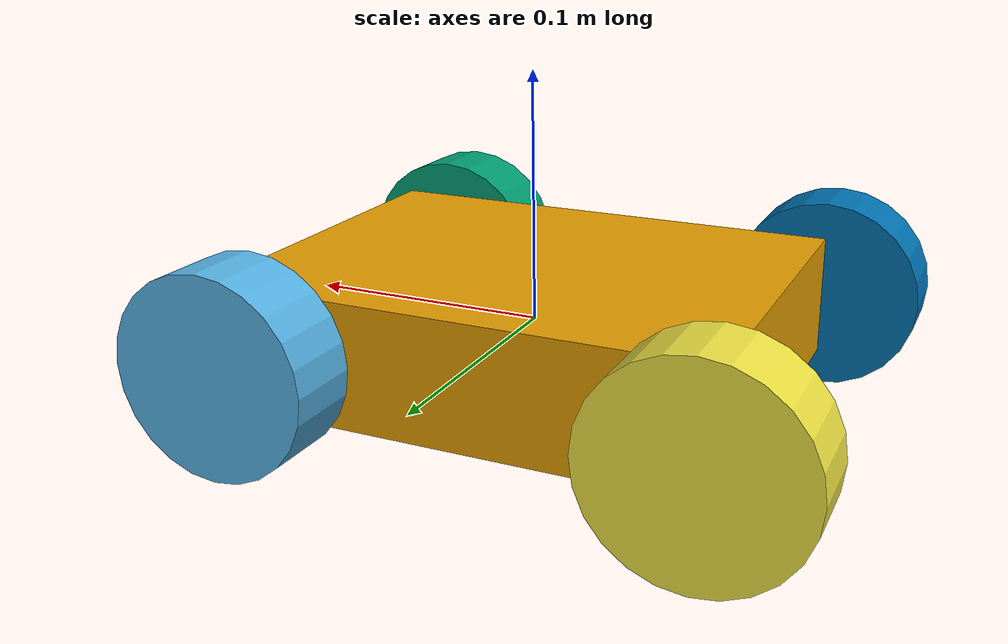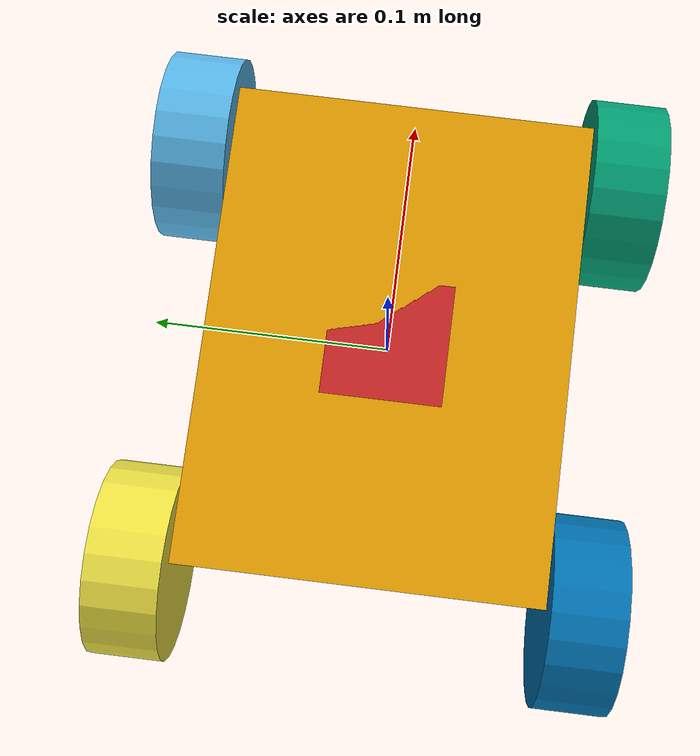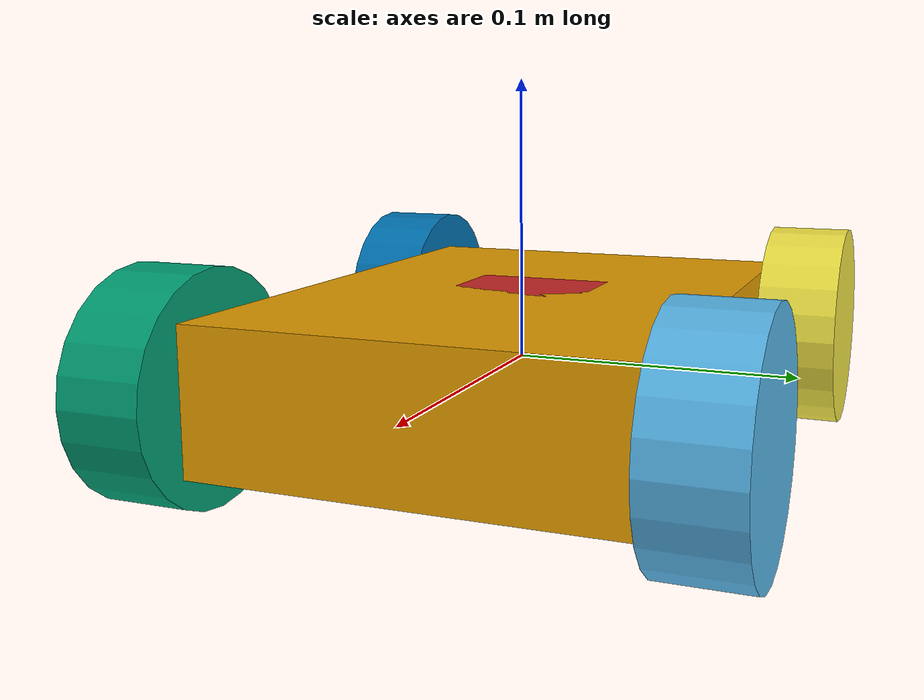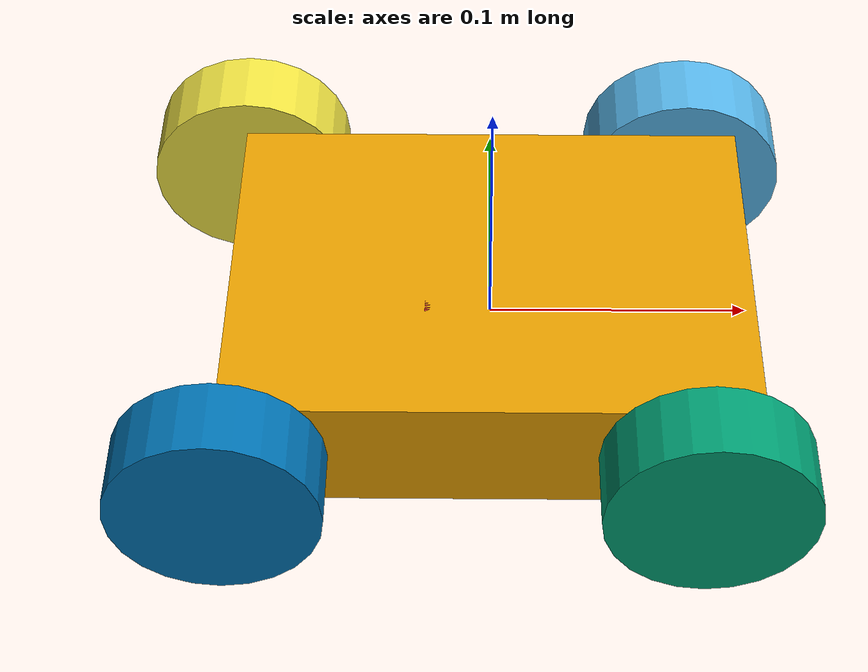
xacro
<?xml version='1.0'?>

<robot name="robot" xmlns:xacro="http://www.ros.org/wiki/xacro">

  <xacro:property name="chassis_width" value="0.15"/>
  <xacro:property name="chassis_length" value="0.2"/>
  <xacro:property name="chassis_height" value="0.05"/>
  <xacro:property name="chassis_mass" value="0.5"/>
  <xacro:property name="wheel_radius" value="0.04"/>
  <xacro:property name="wheel_width" value="0.03"/>
  <xacro:property name="camera_link" value="0.05" />

  <xacro:include filename="$(find enph353_ros_lab)/urdf/macros.xacro" />

  <xacro:macro name="default_inertial" params="mass">
    <inertial>
      <mass value="${mass}" />
      <inertia ixx="1.0" ixy="0.0" ixz="0.0" iyy="1.0" iyz="0.0" izz="1.0" />
    </inertial>
  </xacro:macro>

  <material name="blue">
    <color rgba="0 0 0.8 1"/>
  </material>

  <material name="black">
    <color rgba="0 0 0 1"/>
  </material>

  <link name='chassis'>
    <xacro:box_inertial name="chassis" m="${chassis_mass}" x="${chassis_length}" y="${chassis_width}" z="${chassis_height}"/>

    <collision name='chassis_collision'>
      <geometry>
        <box size="${chassis_length} ${chassis_width} ${chassis_height}"/>
      </geometry>
    </collision>
    <xacro:default_inertial mass="1"/>

    <visual name='chassis_visual'>
      <origin xyz="0 0 0" rpy=" 0 0 0"/>
      <geometry>
        <box size="${chassis_length} ${chassis_width} ${chassis_height}"/>
      </geometry>
    </visual>
  </link>

  <link name="left_front_wheel">
    <xacro:cylinder_inertial name="wheel" m="0.1" r="${wheel_radius}" h="${wheel_width}" />
    <xacro:default_inertial mass="0.1"/>
    <visual>
      <origin rpy="1.57075 0 0" xyz="0 0 0"/>
      <geometry>
        <cylinder length="${wheel_width}" radius="${wheel_radius}"/>
      </geometry>>
    </visual>
    <collision name='wheel_collision'>
      <origin rpy="1.57075 0 0" xyz="0 0 0"/>
      <geometry>
        <cylinder length="${wheel_width}" radius="${wheel_radius}"/>
      </geometry>>
    </collision>
  </link>

  <joint name="left_front_wheel_joint" type="continuous">
    <axis xyz="0 1 0" />
    <parent link="chassis"/>
    <child link="left_front_wheel"/>
    <origin rpy="0 0 0" xyz="0.08 0.09 0"/>
  </joint>

  <link name="right_front_wheel">
    <xacro:cylinder_inertial name="wheel" m="0.1" r="${wheel_radius}" h="${wheel_width}" />
    <xacro:default_inertial mass="0.1"/>
    <visual>
      <origin rpy="1.57075 0 0" xyz="0 0 0"/>
      <geometry>
        <cylinder length="${wheel_width}" radius="${wheel_radius}"/>
      </geometry>>
    </visual>
    <collision name='wheel_collision'>
      <origin rpy="1.57075 0 0" xyz="0 0 0"/>
      <geometry>
        <cylinder length="${wheel_width}" radius="${wheel_radius}"/>
      </geometry>>
    </collision>
  </link>

  <joint name="right_front_wheel_joint" type="continuous">
    <axis xyz="0 1 0" />
    <parent link="chassis"/>
    <child link="right_front_wheel"/>
    <origin rpy="0 0 0" xyz="0.08 -0.09 0"/>
  </joint>

  <link name="left_back_wheel">
    <xacro:cylinder_inertial name="wheel" m="0.1" r="${wheel_radius}" h="${wheel_width}" />
    <xacro:default_inertial mass="0.1"/>
    <visual>
      <origin rpy="1.57075 0 0" xyz="0 0 0"/>
      <geometry>
        <cylinder length="${wheel_width}" radius="${wheel_radius}"/>
      </geometry>>
    </visual>
    <collision name='wheel_collision'>
      <origin rpy="1.57075 0 0" xyz="0 0 0"/>
      <geometry>
        <cylinder length="${wheel_width}" radius="${wheel_radius}"/>
      </geometry>>
    </collision>
  </link>

  <joint name="left_back_wheel_joint" type="continuous">
    <axis xyz="0 1 0" />
    <parent link="chassis"/>
    <child link="left_back_wheel"/>
    <origin rpy="0 0 0" xyz="-0.1 0.09 0"/>
  </joint>

  <link name="right_back_wheel">
    <xacro:cylinder_inertial name="wheel" m="0.1" r="${wheel_radius}" h="${wheel_width}" />
    <xacro:default_inertial mass="0.1"/>
    <visual>
      <origin rpy="1.57075 0 0" xyz="0 0 0"/>
      <geometry>
        <cylinder length="${wheel_width}" radius="${wheel_radius}"/>
      </geometry>>
    </visual>
    <collision name='wheel_collision'>
      <origin rpy="1.57075 0 0" xyz="0 0 0"/>
      <geometry>
        <cylinder length="${wheel_width}" radius="${wheel_radius}"/>
      </geometry>>
    </collision>
  </link>

  <joint name="right_back_wheel_joint" type="continuous">
    <axis xyz="0 1 0" />
    <parent link="chassis"/>
    <child link="right_back_wheel"/>
    <origin rpy="0 0 0" xyz="-0.1 -0.09 0"/>
  </joint>

 <!-- Camera -->

 <joint name="camera_joint" type="fixed">
    <axis xyz="0 1 0" />
    <origin xyz="0 0 0" rpy="0 0 0"/>
    <parent link="chassis"/>
    <child link="camera_link"/>
  </joint>

  <link name="camera_link">
    <collision>
      <origin xyz="0 0 0" rpy="1 0 0"/>
      <geometry>
    <box size="${camera_link} ${camera_link} ${camera_link}"/>
      </geometry>
    </collision>

    <visual>
      <origin xyz="0 0 0" rpy="0 0 0"/>
      <geometry>
    <box size="${camera_link} ${camera_link} ${camera_link}"/>
      </geometry>
      <material name="red"/>
    </visual>

    <inertial>
      <mass value="1e-5" />
      <origin xyz="0 0 0" rpy="0 0 0"/>
      <inertia ixx="1e-6" ixy="0" ixz="0" iyy="1e-6" iyz="0" izz="1e-6" />
    </inertial>
  </link>

<gazebo reference="camera_link">
    <sensor type="camera" name="camera1">
      <update_rate>30.0</update_rate>
      <camera name="head">
        <horizontal_fov>1.3962634</horizontal_fov>
        <image>
          <width>800</width>
          <height>800</height>
          <format>R8G8B8</format>
        </image>
        <clip>
          <near>0.02</near>
          <far>300</far>
        </clip>
        <noise>
          <type>gaussian</type>
          <!-- Noise is sampled independently per pixel on each frame.
               That pixel's noise value is added to each of its color
               channels, which at that point lie in the range [0,1]. -->
          <mean>0.0</mean>
          <stddev>0.007</stddev>
        </noise>
      </camera>
      <plugin name="camera_controller" filename="libgazebo_ros_camera.so">
        <alwaysOn>true</alwaysOn>
        <updateRate>0.0</updateRate>
        <cameraName>rrbot/camera1</cameraName>
        <imageTopicName>image_raw</imageTopicName>
        <cameraInfoTopicName>camera_info</cameraInfoTopicName>
        <frameName>camera_link</frameName>
        <hackBaseline>0.07</hackBaseline>
        <distortionK1>0.0</distortionK1>
        <distortionK2>0.0</distortionK2>
        <distortionK3>0.0</distortionK3>
        <distortionT1>0.0</distortionT1>
        <distortionT2>0.0</distortionT2>
      </plugin>
    </sensor>
  </gazebo>

<gazebo>
  <plugin name="skid_steer_drive_controller" filename="libgazebo_ros_skid_steer_drive.so">
    <updateRate>100.0</updateRate>
    <robotNamespace>/</robotNamespace>
    <leftFrontJoint>left_front_wheel_joint</leftFrontJoint>
    <rightFrontJoint>right_front_wheel_joint</rightFrontJoint>
    <leftRearJoint>left_back_wheel_joint</leftRearJoint>
    <rightRearJoint>right_back_wheel_joint</rightRearJoint>
    <wheelSeparation>0.18</wheelSeparation>
    <wheelDiameter>0.08</wheelDiameter>
    <robotBaseFrame>chassis</robotBaseFrame>
    <torque>1</torque>
    <topicName>cmd_vel</topicName>
    <broadcastTF>false</broadcastTF>
  </plugin>
</gazebo>

</robot>
